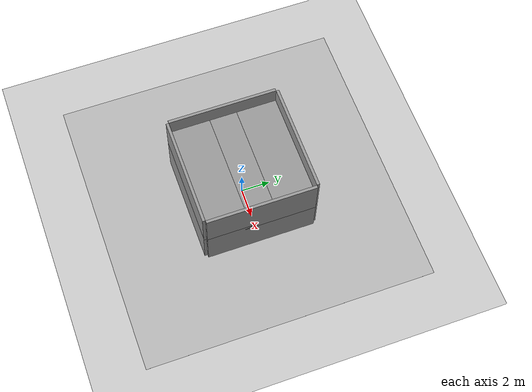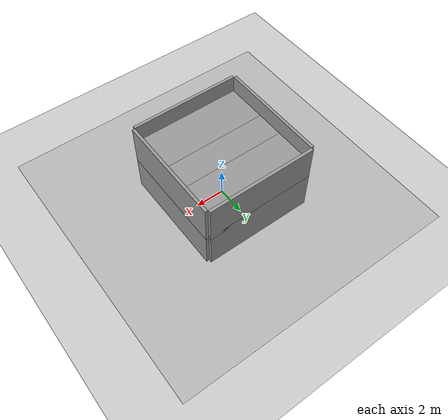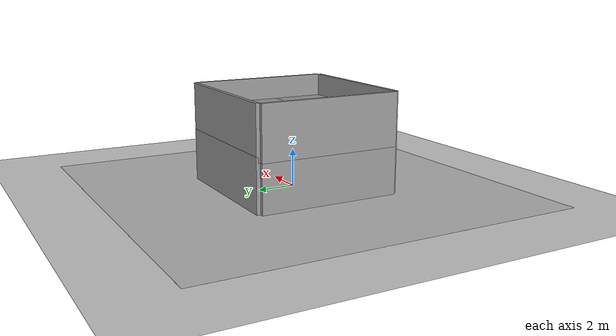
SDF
<sdf version="1.7">
 <world name="default">
  <model name="ground_plane">
   <static>1</static>
   <link name="link">
    <collision name="collision">
     <geometry><plane><normal>0 0 1</normal><size>100 100</size></plane></geometry>
     <surface><friction><ode><mu>100</mu><mu2>50</mu2></ode></friction></surface>
    </collision>
    <visual name="visual">
     <cast_shadows>0</cast_shadows>
     <geometry><plane><normal>0 0 1</normal><size>100 100</size></plane></geometry>
     <material>
      <script><uri>file://media/materials/scripts/gazebo.material</uri><name>Gazebo/Grey</name></script>
     </material>
    </visual>
   </link>
  </model>
  <gravity>0 0 -9.8</gravity>
  <magnetic_field>6e-06 2.3e-05 -4.2e-05</magnetic_field>
  <atmosphere type="adiabatic"/>
  <physics name="default_physics" default="0" type="ode">
   <max_step_size>0.001</max_step_size>
   <real_time_factor>1</real_time_factor>
   <real_time_update_rate>1000</real_time_update_rate>
  </physics>
  <scene><ambient>0.4 0.4 0.4 1</ambient><background>0.7 0.7 0.7 1</background><shadows>1</shadows></scene>
  <spherical_coordinates>
   <surface_model>EARTH_WGS84</surface_model>
   <latitude_deg>0</latitude_deg>
   <longitude_deg>0</longitude_deg>
   <elevation>0</elevation>
   <heading_deg>0</heading_deg>
  </spherical_coordinates>
  <model name="Floor_room">
   <link name="main">
    <pose>0 0 0.01 0 -0 0</pose>
    <collision name="main_Collision"><geometry><box><size>20 20 0.001</size></box></geometry></collision>
    <visual name="main_Visual">
     <geometry><box><size>20 20 0.001</size></box></geometry>
     <material>
      <script>
       <uri>model://Floor_room/materials/scripts</uri>
       <uri>model://Floor_room/materials/textures</uri>
       <name>floor_room</name>
      </script>
     </material>
    </visual>
   </link>
   <static>1</static>
   <pose>-0.001681 0.002295 0 0 -0 0</pose>
  </model>
  <model name="grey_wall">
   <static>1</static>
   <link name="link">
    <pose>0 0 1.4 0 -0 0</pose>
    <collision name="collision"><geometry><box><size>7.5 0.2 2.8</size></box></geometry></collision>
    <visual name="visual">
     <cast_shadows>0</cast_shadows>
     <geometry><box><size>7.5 0.2 2.8</size></box></geometry>
     <material>
      <script>
       <uri>model://grey_wall/materials/scripts</uri>
       <uri>model://grey_wall/materials/textures</uri>
       <name>vrc/grey_wall</name>
      </script>
     </material>
    </visual>
   </link>
   <pose>0 -3.85 0 0 -0 0</pose>
  </model>
  <model name="grey_wall_0">
   <static>1</static>
   <link name="link">
    <pose>0 0 1.4 0 -0 0</pose>
    <collision name="collision"><geometry><box><size>7.5 0.2 2.8</size></box></geometry></collision>
    <visual name="visual">
     <cast_shadows>0</cast_shadows>
     <geometry><box><size>7.5 0.2 2.8</size></box></geometry>
     <material>
      <script>
       <uri>model://grey_wall/materials/scripts</uri>
       <uri>model://grey_wall/materials/textures</uri>
       <name>vrc/grey_wall</name>
      </script>
     </material>
    </visual>
   </link>
   <pose>0 3.85 0 0 -0 0</pose>
  </model>
  <model name="grey_wall_1">
   <static>1</static>
   <link name="link">
    <pose>0 0 1.4 0 -0 0</pose>
    <collision name="collision"><geometry><box><size>7.5 0.2 2.8</size></box></geometry></collision>
    <visual name="visual">
     <cast_shadows>0</cast_shadows>
     <geometry><box><size>7.5 0.2 2.8</size></box></geometry>
     <material>
      <script>
       <uri>model://grey_wall/materials/scripts</uri>
       <uri>model://grey_wall/materials/textures</uri>
       <name>vrc/grey_wall</name>
      </script>
     </material>
    </visual>
   </link>
   <pose>3.85 0 0 0 -0 1.57096</pose>
  </model>
  <model name="grey_wall_2">
   <static>1</static>
   <link name="link">
    <pose>0 0 1.4 0 -0 0</pose>
    <collision name="collision"><geometry><box><size>7.5 0.2 2.8</size></box></geometry></collision>
    <visual name="visual">
     <cast_shadows>0</cast_shadows>
     <geometry><box><size>7.5 0.2 2.8</size></box></geometry>
     <material>
      <script>
       <uri>model://grey_wall/materials/scripts</uri>
       <uri>model://grey_wall/materials/textures</uri>
       <name>vrc/grey_wall</name>
      </script>
     </material>
    </visual>
   </link>
   <pose>-3.85 0 0 0 -0 1.57096</pose>
  </model>
  <light name="user_directional_light_0" type="directional">
   <pose>1.90703 1.7116 1 0 -0 0</pose>
   <diffuse>0.5 0.5 0.5 1</diffuse>
   <specular>0.1 0.1 0.1 1</specular>
   <direction>0.1 0.1 -0.9</direction>
   <attenuation>
    <range>20</range>
    <constant>0.5</constant>
    <linear>0.01</linear>
    <quadratic>0.001</quadratic>
   </attenuation>
   <spot><inner_angle>0</inner_angle><outer_angle>0</outer_angle><falloff>0</falloff></spot>
  </light>
  <light name="user_spot_light_0" type="spot">
   <pose>0.589804 2.02287 1 0 -0 0</pose>
   <diffuse>0.5 0.5 0.5 1</diffuse>
   <specular>0.1 0.1 0.1 1</specular>
   <direction>0 0 -1</direction>
   <attenuation>
    <range>20</range>
    <constant>0.5</constant>
    <linear>0.01</linear>
    <quadratic>0.001</quadratic>
   </attenuation>
   <cast_shadows>0</cast_shadows>
   <spot><inner_angle>0.6</inner_angle><outer_angle>1</outer_angle><falloff>1</falloff></spot>
  </light>
  <model name="grey_wall_3">
   <static>1</static>
   <link name="link">
    <pose>0 0 1.4 0 -0 0</pose>
    <collision name="collision"><geometry><box><size>7.5 0.2 2.8</size></box></geometry></collision>
    <visual name="visual">
     <cast_shadows>0</cast_shadows>
     <geometry><box><size>7.5 0.2 2.8</size></box></geometry>
     <material>
      <script>
       <uri>model://grey_wall/materials/scripts</uri>
       <uri>model://grey_wall/materials/textures</uri>
       <name>vrc/grey_wall</name>
      </script>
     </material>
    </visual>
   </link>
   <pose>0 3.75 4 1.5708 -0 0</pose>
  </model>
  <model name="grey_wall_4">
   <static>1</static>
   <link name="link">
    <pose>0 0 1.4 0 -0 0</pose>
    <collision name="collision"><geometry><box><size>7.5 0.2 2.8</size></box></geometry></collision>
    <visual name="visual">
     <cast_shadows>0</cast_shadows>
     <geometry><box><size>7.5 0.2 2.8</size></box></geometry>
     <material>
      <script>
       <uri>model://grey_wall/materials/scripts</uri>
       <uri>model://grey_wall/materials/textures</uri>
       <name>vrc/grey_wall</name>
      </script>
     </material>
    </visual>
   </link>
   <pose>0 0.95 4 1.5708 -0 0</pose>
  </model>
  <model name="grey_wall_5">
   <static>1</static>
   <link name="link">
    <pose>0 0 1.4 0 -0 0</pose>
    <collision name="collision"><geometry><box><size>7.5 0.2 2.8</size></box></geometry></collision>
    <visual name="visual">
     <cast_shadows>0</cast_shadows>
     <geometry><box><size>7.5 0.2 2.8</size></box></geometry>
     <material>
      <script>
       <uri>model://grey_wall/materials/scripts</uri>
       <uri>model://grey_wall/materials/textures</uri>
       <name>vrc/grey_wall</name>
      </script>
     </material>
    </visual>
   </link>
   <pose>0 -0.95 4 1.5708 -0 0</pose>
  </model>
  <light name="user_spot_light_0_clone" type="spot">
   <pose>-0.383938 -1.13491 1.23081 0 -0 0</pose>
   <diffuse>0.5 0.5 0.5 1</diffuse>
   <specular>0.1 0.1 0.1 1</specular>
   <direction>0 0 -1</direction>
   <attenuation>
    <range>20</range>
    <constant>0.5</constant>
    <linear>0.01</linear>
    <quadratic>0.001</quadratic>
   </attenuation>
   <cast_shadows>0</cast_shadows>
   <spot><inner_angle>0.6</inner_angle><outer_angle>1</outer_angle><falloff>1</falloff></spot>
  </light>
  <light name="user_spot_light_0_clone_1" type="spot">
   <pose>0.615848 -0.668756 1.23081 0 -0 0</pose>
   <diffuse>0.5 0.5 0.5 1</diffuse>
   <specular>0.1 0.1 0.1 1</specular>
   <direction>0 0 -1</direction>
   <attenuation>
    <range>20</range>
    <constant>0.5</constant>
    <linear>0.01</linear>
    <quadratic>0.001</quadratic>
   </attenuation>
   <cast_shadows>0</cast_shadows>
   <spot><inner_angle>0.6</inner_angle><outer_angle>1</outer_angle><falloff>1</falloff></spot>
  </light>
  <light name="user_spot_light_0_clone_0" type="spot">
   <pose>-0.706863 -0.391915 1.23081 0 -0 0</pose>
   <diffuse>0.498039 0.498039 0.498039 1</diffuse>
   <specular>0.0980392 0.0980392 0.0980392 1</specular>
   <direction>0 0 -1</direction>
   <attenuation>
    <range>20</range>
    <constant>0.5</constant>
    <linear>0.01</linear>
    <quadratic>0.001</quadratic>
   </attenuation>
   <cast_shadows>0</cast_shadows>
   <spot><inner_angle>0.6</inner_angle><outer_angle>1</outer_angle><falloff>1</falloff></spot>
  </light>
  <model name="grey_wall_clone">
   <static>1</static>
   <link name="link">
    <pose>0 0 1.4 0 -0 0</pose>
    <collision name="collision"><geometry><box><size>7.5 0.2 2.8</size></box></geometry></collision>
    <visual name="visual">
     <cast_shadows>0</cast_shadows>
     <geometry><box><size>7.5 0.2 2.8</size></box></geometry>
     <material>
      <script>
       <uri>model://grey_wall/materials/scripts</uri>
       <uri>model://grey_wall/materials/textures</uri>
       <name>vrc/grey_wall</name>
      </script>
     </material>
    </visual>
   </link>
   <pose>0 -3.85 2.5 0 -0 0</pose>
  </model>
  <model name="grey_wall_1_clone">
   <static>1</static>
   <link name="link">
    <pose>0 0 1.4 0 -0 0</pose>
    <collision name="collision"><geometry><box><size>7.5 0.2 2.8</size></box></geometry></collision>
    <visual name="visual">
     <cast_shadows>0</cast_shadows>
     <geometry><box><size>7.5 0.2 2.8</size></box></geometry>
     <material>
      <script>
       <uri>model://grey_wall/materials/scripts</uri>
       <uri>model://grey_wall/materials/textures</uri>
       <name>vrc/grey_wall</name>
      </script>
     </material>
    </visual>
   </link>
   <pose>3.85 0 2.5 0 -0 1.57096</pose>
  </model>
  <model name="grey_wall_0_clone">
   <static>1</static>
   <link name="link">
    <pose>0 0 1.4 0 -0 0</pose>
    <collision name="collision"><geometry><box><size>7.5 0.2 2.8</size></box></geometry></collision>
    <visual name="visual">
     <cast_shadows>0</cast_shadows>
     <geometry><box><size>7.5 0.2 2.8</size></box></geometry>
     <material>
      <script>
       <uri>model://grey_wall/materials/scripts</uri>
       <uri>model://grey_wall/materials/textures</uri>
       <name>vrc/grey_wall</name>
      </script>
     </material>
    </visual>
   </link>
   <pose>0 3.85 2.5 0 -0 0</pose>
  </model>
  <model name="grey_wall_2_clone">
   <static>1</static>
   <link name="link">
    <pose>0 0 1.4 0 -0 0</pose>
    <collision name="collision"><geometry><box><size>7.5 0.2 2.8</size></box></geometry></collision>
    <visual name="visual">
     <cast_shadows>0</cast_shadows>
     <geometry><box><size>7.5 0.2 2.8</size></box></geometry>
     <material>
      <script>
       <uri>model://grey_wall/materials/scripts</uri>
       <uri>model://grey_wall/materials/textures</uri>
       <name>vrc/grey_wall</name>
      </script>
     </material>
    </visual>
   </link>
   <pose>-3.85 0 2.5 0 -0 1.57096</pose>
  </model>
  <audio><device>default</device></audio>
  <light name="user_spot_light_0_clone_2" type="spot">
   <pose>0.745533 1.37528 1.23081 0 -0 0</pose>
   <diffuse>0.5 0.5 0.5 1</diffuse>
   <specular>0.1 0.1 0.1 1</specular>
   <direction>0 0 -1</direction>
   <attenuation>
    <range>20</range>
    <constant>0.5</constant>
    <linear>0.01</linear>
    <quadratic>0.001</quadratic>
   </attenuation>
   <cast_shadows>0</cast_shadows>
   <spot><inner_angle>0.6</inner_angle><outer_angle>1</outer_angle><falloff>1</falloff></spot>
  </light>
  <light name="user_spot_light_0_clone_3" type="spot">
   <pose>0.747088 0.126739 1.23081 0 -0 0</pose>
   <diffuse>0.5 0.5 0.5 1</diffuse>
   <specular>0.1 0.1 0.1 1</specular>
   <direction>0 0 -1</direction>
   <attenuation>
    <range>20</range>
    <constant>0.5</constant>
    <linear>0.01</linear>
    <quadratic>0.001</quadratic>
   </attenuation>
   <cast_shadows>0</cast_shadows>
   <spot><inner_angle>0.6</inner_angle><outer_angle>1</outer_angle><falloff>1</falloff></spot>
  </light>
  <light name="user_spot_light_0_clone_4" type="spot">
   <pose>0.744005 -0.291026 1.23081 0 -0 0</pose>
   <diffuse>0.5 0.5 0.5 1</diffuse>
   <specular>0.1 0.1 0.1 1</specular>
   <direction>0 0 -1</direction>
   <attenuation>
    <range>20</range>
    <constant>0.5</constant>
    <linear>0.01</linear>
    <quadratic>0.001</quadratic>
   </attenuation>
   <cast_shadows>0</cast_shadows>
   <spot><inner_angle>0.6</inner_angle><outer_angle>1</outer_angle><falloff>1</falloff></spot>
  </light>
  <light name="user_spot_light_0_clone_5" type="spot">
   <pose>0.761056 -1.18804 1.23081 0 -0 0</pose>
   <diffuse>0.5 0.5 0.5 1</diffuse>
   <specular>0.1 0.1 0.1 1</specular>
   <direction>0 0 -1</direction>
   <attenuation>
    <range>20</range>
    <constant>0.5</constant>
    <linear>0.01</linear>
    <quadratic>0.001</quadratic>
   </attenuation>
   <cast_shadows>0</cast_shadows>
   <spot><inner_angle>0.6</inner_angle><outer_angle>1</outer_angle><falloff>1</falloff></spot>
  </light>
  <light name="user_spot_light_0_clone_6" type="spot">
   <pose>-0.751844 1.22208 1.23081 0 -0 0</pose>
   <diffuse>0.5 0.5 0.5 1</diffuse>
   <specular>0.1 0.1 0.1 1</specular>
   <direction>0 0 -1</direction>
   <attenuation>
    <range>20</range>
    <constant>0.5</constant>
    <linear>0.01</linear>
    <quadratic>0.001</quadratic>
   </attenuation>
   <cast_shadows>0</cast_shadows>
   <spot><inner_angle>0.6</inner_angle><outer_angle>1</outer_angle><falloff>1</falloff></spot>
  </light>
  <light name="user_spot_light_0_clone_7" type="spot">
   <pose>-0.75156 0.239832 1.23081 0 -0 0</pose>
   <diffuse>0.5 0.5 0.5 1</diffuse>
   <specular>0.1 0.1 0.1 1</specular>
   <direction>0 0 -1</direction>
   <attenuation>
    <range>20</range>
    <constant>0.5</constant>
    <linear>0.01</linear>
    <quadratic>0.001</quadratic>
   </attenuation>
   <cast_shadows>0</cast_shadows>
   <spot><inner_angle>0.6</inner_angle><outer_angle>1</outer_angle><falloff>1</falloff></spot>
  </light>
  <light name="user_spot_light_0_clone_8" type="spot">
   <pose>-0.747848 -0.249761 1.23081 0 -0 0</pose>
   <diffuse>0.5 0.5 0.5 1</diffuse>
   <specular>0.1 0.1 0.1 1</specular>
   <direction>0 0 -1</direction>
   <attenuation>
    <range>20</range>
    <constant>0.5</constant>
    <linear>0.01</linear>
    <quadratic>0.001</quadratic>
   </attenuation>
   <cast_shadows>0</cast_shadows>
   <spot><inner_angle>0.6</inner_angle><outer_angle>1</outer_angle><falloff>1</falloff></spot>
  </light>
  <light name="user_spot_light_0_clone_9" type="spot">
   <pose>-0.738937 -1.21718 1.23081 0 -0 0</pose>
   <diffuse>0.5 0.5 0.5 1</diffuse>
   <specular>0.1 0.1 0.1 1</specular>
   <direction>0 0 -1</direction>
   <attenuation>
    <range>20</range>
    <constant>0.5</constant>
    <linear>0.01</linear>
    <quadratic>0.001</quadratic>
   </attenuation>
   <cast_shadows>0</cast_shadows>
   <spot><inner_angle>0.6</inner_angle><outer_angle>1</outer_angle><falloff>1</falloff></spot>
  </light>
  <model name="plant_board">
   <link name="link">
    <inertial>
     <mass>1</mass>
     <inertia>
      <ixx>0.166667</ixx>
      <ixy>0</ixy>
      <ixz>0</ixz>
      <iyy>0.166667</iyy>
      <iyz>0</iyz>
      <izz>0.166667</izz>
     </inertia>
    </inertial>
    <visual name="visual">
     <geometry><box><size>0.25 3 0.01</size></box></geometry>
     <material>
      <script><name>Gazebo/Grey</name><uri>file://media/materials/scripts/gazebo.material</uri></script>
      <shader type="pixel"><normal_map>__default__</normal_map></shader>
      <ambient>0.3 0.3 0.3 1</ambient>
      <diffuse>0.7 0.7 0.7 1</diffuse>
      <specular>0.01 0.01 0.01 1</specular>
      <emissive>0 0 0 1</emissive>
     </material>
    </visual>
    <collision name="collision">
     <geometry><box><size>0.25 3 0.01</size></box></geometry>
     <surface>
      <friction>
       <ode><mu>1</mu><mu2>1</mu2><fdir1>0 0 0</fdir1><slip1>0</slip1><slip2>0</slip2></ode>
       <torsional>
        <coefficient>1</coefficient>
        <patch_radius>0</patch_radius>
        <surface_radius>0</surface_radius>
        <use_patch_radius>1</use_patch_radius>
        <ode><slip>0</slip></ode>
       </torsional>
      </friction>
      <bounce><restitution_coefficient>0</restitution_coefficient><threshold>1e+06</threshold></bounce>
      <contact>
       <collide_without_contact>0</collide_without_contact>
       <collide_without_contact_bitmask>1</collide_without_contact_bitmask>
       <collide_bitmask>1</collide_bitmask>
       <ode>
        <soft_cfm>0</soft_cfm>
        <soft_erp>0.2</soft_erp>
        <kp>1e+13</kp>
        <kd>1</kd>
        <max_vel>0.01</max_vel>
        <min_depth>0</min_depth>
       </ode>
       <bullet>
        <split_impulse>1</split_impulse>
        <split_impulse_penetration_threshold>-0.01</split_impulse_penetration_threshold>
        <soft_cfm>0</soft_cfm>
        <soft_erp>0.2</soft_erp>
        <kp>1e+13</kp>
        <kd>1</kd>
       </bullet>
      </contact>
     </surface>
    </collision>
   </link>
   <static>1</static>
   <pose>0.75 0 1.25 0 -0 0</pose>
  </model>
  <model name="plant_board_clone">
   <link name="link">
    <inertial>
     <mass>1</mass>
     <inertia>
      <ixx>0.166667</ixx>
      <ixy>0</ixy>
      <ixz>0</ixz>
      <iyy>0.166667</iyy>
      <iyz>0</iyz>
      <izz>0.166667</izz>
     </inertia>
    </inertial>
    <visual name="visual">
     <geometry><box><size>0.25 3 0.01</size></box></geometry>
     <material>
      <script><name>Gazebo/Grey</name><uri>file://media/materials/scripts/gazebo.material</uri></script>
      <shader type="pixel"><normal_map>__default__</normal_map></shader>
      <ambient>0.3 0.3 0.3 1</ambient>
      <diffuse>0.7 0.7 0.7 1</diffuse>
      <specular>0.01 0.01 0.01 1</specular>
      <emissive>0 0 0 1</emissive>
     </material>
    </visual>
    <collision name="collision">
     <geometry><box><size>0.25 3 0.01</size></box></geometry>
     <surface>
      <friction>
       <ode><mu>1</mu><mu2>1</mu2><fdir1>0 0 0</fdir1><slip1>0</slip1><slip2>0</slip2></ode>
       <torsional>
        <coefficient>1</coefficient>
        <patch_radius>0</patch_radius>
        <surface_radius>0</surface_radius>
        <use_patch_radius>1</use_patch_radius>
        <ode><slip>0</slip></ode>
       </torsional>
      </friction>
      <bounce><restitution_coefficient>0</restitution_coefficient><threshold>1e+06</threshold></bounce>
      <contact>
       <collide_without_contact>0</collide_without_contact>
       <collide_without_contact_bitmask>1</collide_without_contact_bitmask>
       <collide_bitmask>1</collide_bitmask>
       <ode>
        <soft_cfm>0</soft_cfm>
        <soft_erp>0.2</soft_erp>
        <kp>1e+13</kp>
        <kd>1</kd>
        <max_vel>0.01</max_vel>
        <min_depth>0</min_depth>
       </ode>
       <bullet>
        <split_impulse>1</split_impulse>
        <split_impulse_penetration_threshold>-0.01</split_impulse_penetration_threshold>
        <soft_cfm>0</soft_cfm>
        <soft_erp>0.2</soft_erp>
        <kp>1e+13</kp>
        <kd>1</kd>
       </bullet>
      </contact>
     </surface>
    </collision>
   </link>
   <static>1</static>
   <pose>-0.75 0 1.25 0 -0 0</pose>
  </model>
 </world>
</sdf>
